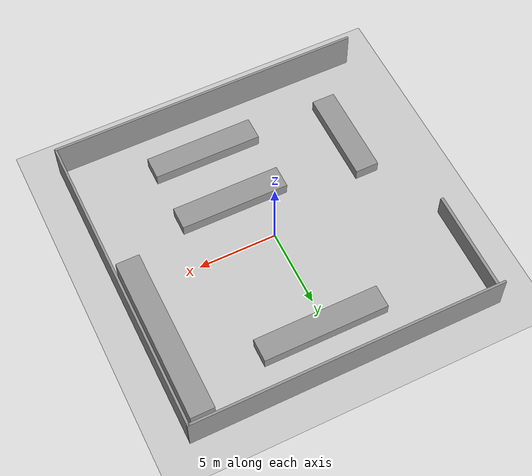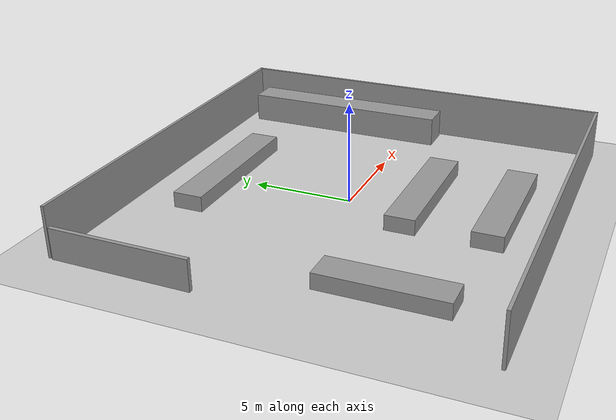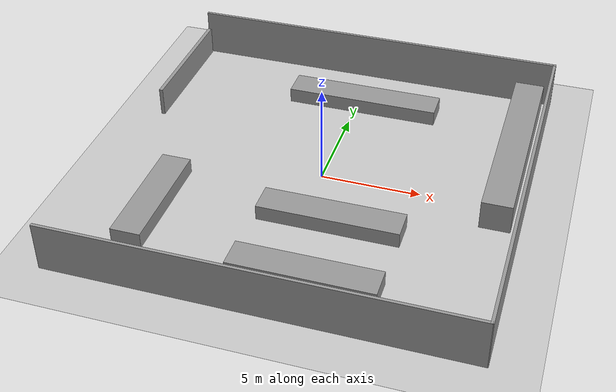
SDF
<?xml version="1.0"?>
<sdf version="1.7">

  <!-- Define the world with physics, plugins, and lighting -->
  <world name="supermarket">
    <!-- Physics Settings -->
    <physics name="default_physics" type="ode">
      <max_step_size>0.001</max_step_size>
      <real_time_factor>1.0</real_time_factor>
    </physics>

    <!-- Gazebo Plugins -->
    <plugin filename="gz-sim-physics-system" name="gz::sim::systems::Physics"/>
    <plugin filename="gz-sim-user-commands-system" name="gz::sim::systems::UserCommands"/>
    <plugin filename="gz-sim-scene-broadcaster-system" name="gz::sim::systems::SceneBroadcaster"/>
    <plugin filename="gz-sim-contact-system" name="gz::sim::systems::Contact"/>
    <plugin filename="gz-sim-sensors-system" name="gz::sim::systems::Sensors">
      <render_engine>ogre2</render_engine>
    </plugin>
    <plugin filename="gz-sim-imu-system" name="gz::sim::systems::Imu"/>

    <!-- Light Source -->
    <light type="directional" name="sun">
      <cast_shadows>true</cast_shadows>
      <pose>0 0 10 0 0 0</pose>
      <diffuse>0.8 0.8 0.8 1</diffuse>
      <specular>0.2 0.2 0.2 1</specular>
      <attenuation>
        <range>1000</range>
        <constant>0.9</constant>
        <linear>0.01</linear>
        <quadratic>0.001</quadratic>
      </attenuation>
      <direction>-0.5 0.1 -0.9</direction>
    </light>

    <!-- Gravity Settings -->
    <gravity>0 0 -9.81</gravity>

    <!-- Ground Plane to Prevent Objects from Falling -->
    <model name="ground_plane">
      <static>true</static>
      <link name="link">
        <collision name="collision">
          <geometry>
            <plane>
              <normal>0 0 1</normal>
              <size>100 100</size>
            </plane>
          </geometry>
        </collision>
        <visual name="visual">
          <geometry>
            <plane>
              <normal>0 0 1</normal>
              <size>100 100</size>
            </plane>
          </geometry>
          <material>
            <ambient>0.8 0.8 0.8 1</ambient>
            <diffuse>0.8 0.8 0.8 1</diffuse>
            <specular>0.8 0.8 0.8 1</specular>
          </material>
        </visual>
      </link>
    </model>

    <!-- Supermarket Model with Walls -->
    <model name="supermarket">
      <pose>-0.050243 -0.092477 0 0 -0 0</pose>
      <static>true</static>
    <link name='charging station'>
      <collision name='charging station_Collision'>
        <geometry>
          <box>
            <size>6.86053 0.2 2</size>
          </box>
        </geometry>
        <pose>0 0 1 0 -0 0</pose>
      </collision>
      <visual name='charging station_Visual'>
        <pose>0 0 1 0 -0 0</pose>
        <geometry>
          <box>
            <size>6.86053 0.2 2</size>
          </box>
        </geometry>
        <material>
          <script>
            <uri>file://media/materials/scripts/gazebo.material</uri>
            <name>Gazebo/Grey</name>
          </script>
        </material>
      </visual>
      <pose>-9.79492 6.38636 -0.5 0 -0 -1.57877</pose>
    </link>
    <link name='Wall_0'>
      <collision name='Wall_0_Collision'>
        <geometry>
          <box>
            <size>20.25 0.15 2.5</size>
          </box>
        </geometry>
        <pose>0 0 1.25 0 -0 0</pose>
      </collision>
      <visual name='Wall_0_Visual'>
        <pose>0 0 1.25 0 -0 0</pose>
        <geometry>
          <box>
            <size>20.25 0.15 2.5</size>
          </box>
        </geometry>
        <material>
          <script>
            <uri>file://media/materials/scripts/gazebo.material</uri>
            <name>Gazebo/Grey</name>
          </script>
          <ambient>1 1 1 1</ambient>
        </material>
        <meta>
          <layer>0</layer>
        </meta>
      </visual>
      <pose>-0.022919 -9.94541 0 0 -0 3.14159</pose>
    </link>
    <link name='Wall_1'>
      <collision name='Wall_1_Collision'>
        <geometry>
          <box>
            <size>20 0.15 2.5</size>
          </box>
        </geometry>
        <pose>0 0 1.25 0 -0 0</pose>
      </collision>
      <visual name='Wall_1_Visual'>
        <pose>0 0 1.25 0 -0 0</pose>
        <geometry>
          <box>
            <size>20 0.15 2.5</size>
          </box>
        </geometry>
        <material>
          <script>
            <uri>file://media/materials/scripts/gazebo.material</uri>
            <name>Gazebo/Grey</name>
          </script>
          <ambient>1 1 1 1</ambient>
        </material>
        <meta>
          <layer>0</layer>
        </meta>
      </visual>
      <pose>10.067 -0.012432 0 0 -0 -1.5708</pose>
    </link>
    <link name='Wall_2'>
      <collision name='Wall_2_Collision'>
        <geometry>
          <box>
            <size>20 0.15 2.5</size>
          </box>
        </geometry>
        <pose>0 0 1.25 0 -0 0</pose>
      </collision>
      <visual name='Wall_2_Visual'>
        <pose>0 0 1.25 0 -0 0</pose>
        <geometry>
          <box>
            <size>20 0.15 2.5</size>
          </box>
        </geometry>
        <material>
          <script>
            <uri>file://media/materials/scripts/gazebo.material</uri>
            <name>Gazebo/Grey</name>
          </script>
          <ambient>1 1 1 1</ambient>
        </material>
        <meta>
          <layer>0</layer>
        </meta>
      </visual>
      <pose>0.147919 9.94541 0 0 -0 0</pose>
    </link>
    <link name='vegetables'>
      <collision name='vegetables_Collision'>
        <geometry>
          <box>
            <size>7 1.5 1.5</size>
          </box>
        </geometry>
        <pose>0 0 0.75 0 -0 0</pose>
      </collision>
      <visual name='vegetables_Visual'>
        <pose>0 0 0.75 0 -0 0</pose>
        <geometry>
          <box>
            <size>7 1.5 1</size>
          </box>
        </geometry>
        <material>
          <script>
            <uri>file://media/materials/scripts/gazebo.material</uri>
            <name>Gazebo/Grey</name>
          </script>
          <ambient>1 1 1 1</ambient>
        </material>
        <meta>
          <layer>0</layer>
        </meta>
      </visual>
      <pose>1.46702 -7.25988 -0.5 0 -0 0</pose>
    </link>
    <link name='fruits'>
      <collision name='fruits_Collision'>
        <geometry>
          <box>
            <size>7 1.5 1.5</size>
          </box>
        </geometry>
        <pose>0 0 0.75 0 -0 0</pose>
      </collision>
      <visual name='fruits_Visual'>
        <pose>0 0 0.75 0 -0 0</pose>
        <geometry>
          <box>
            <size>7 1.5 1</size>
          </box>
        </geometry>
        <material>
          <script>
            <uri>file://media/materials/scripts/gazebo.material</uri>
            <name>Gazebo/Grey</name>
          </script>
          <ambient>1 1 1 1</ambient>
        </material>
        <meta>
          <layer>0</layer>
        </meta>
      </visual>
      <pose>1.48372 -3.18258 -0.5 0 -0 0</pose>
    </link>
    <link name='drinks'>
      <collision name='drinks_Collision'>
        <geometry>
          <box>
            <size>6 1.5 1.5</size>
          </box>
        </geometry>
        <pose>0 0 0.75 0 -0 0</pose>
      </collision>
      <visual name='drinksVisual'>
        <pose>0 0 0.75 0 -0 0</pose>
        <geometry>
          <box>
            <size>6 1.5 1</size>
          </box>
        </geometry>
        <material>
          <script>
            <uri>file://media/materials/scripts/gazebo.material</uri>
            <name>Gazebo/Grey</name>
          </script>
          <ambient>1 1 1 1</ambient>
        </material>
        <meta>
          <layer>0</layer>
        </meta>
      </visual>
      <pose>-7.09885 -4.41814 -0.5 0 -0 1.5708</pose>
    </link>
    <link name='sweets'>
      <collision name='sweets_Collision'>
        <geometry>
          <box>
            <size>8 1.5 1.5</size>
          </box>
        </geometry>
        <pose>0 0 0.75 0 -0 0</pose>
      </collision>
      <visual name='sweets_Visual'>
        <pose>0 0 0.75 0 -0 0</pose>
        <geometry>
          <box>
            <size>8 1.5 1</size>
          </box>
        </geometry>
        <material>
          <script>
            <uri>file://media/materials/scripts/gazebo.material</uri>
            <name>Gazebo/Grey</name>
          </script>
          <ambient>1 1 1 1</ambient>
        </material>
        <meta>
          <layer>0</layer>
        </meta>
      </visual>
      <pose>0.40844 6.91594 -0.5 0 -0 0</pose>
    </link>
    <link name='dairies'>
      <collision name='dairies_Collision'>
        <geometry>
          <box>
            <size>10.75 1.5 1.5</size>
          </box>
        </geometry>
        <pose>0 0 0.75 0 -0 0</pose>
      </collision>
      <visual name='dairies_Visual'>
        <pose>0 0 0.75 0 -0 0</pose>
        <geometry>
          <box>
            <size>10.75 1.5 1.5</size>
          </box>
        </geometry>
        <material>
          <script>
            <uri>file://media/materials/scripts/gazebo.material</uri>
            <name>Gazebo/Grey</name>
          </script>
          <ambient>1 1 1 1</ambient>
        </material>
        <meta>
          <layer>0</layer>
        </meta>
      </visual>
      <pose>8.95676 3.90401 -0 0 -0 1.5708</pose>
    </link>
    </model>
  </world>
</sdf>
